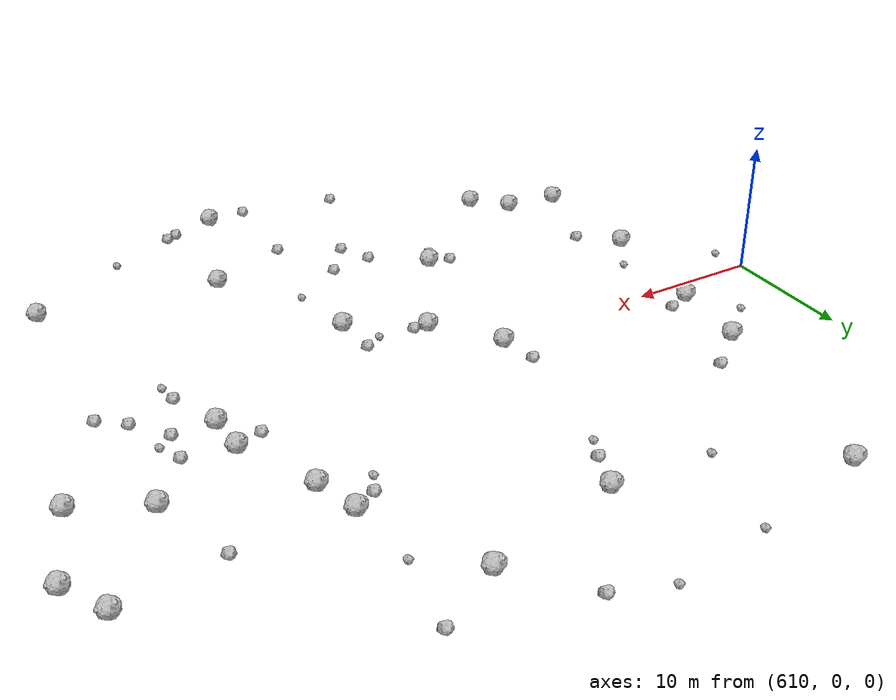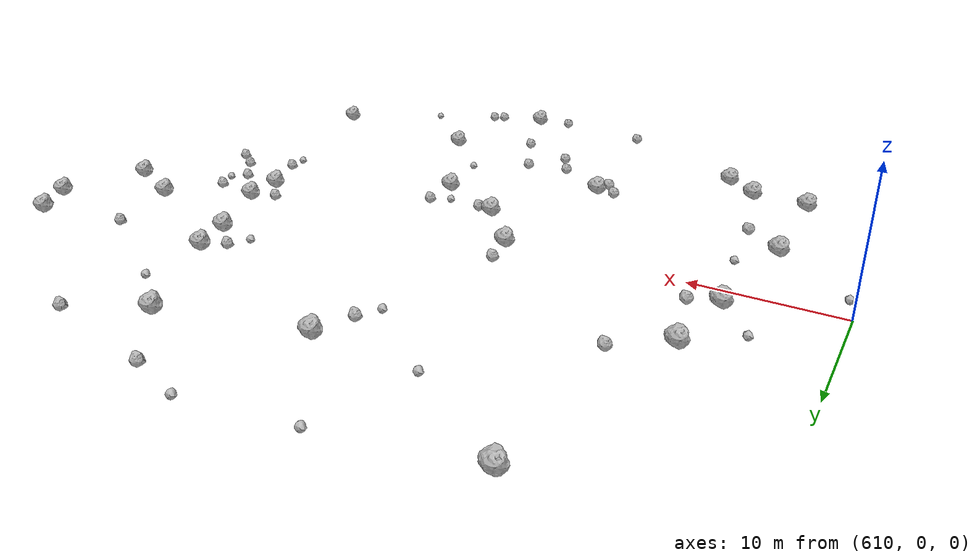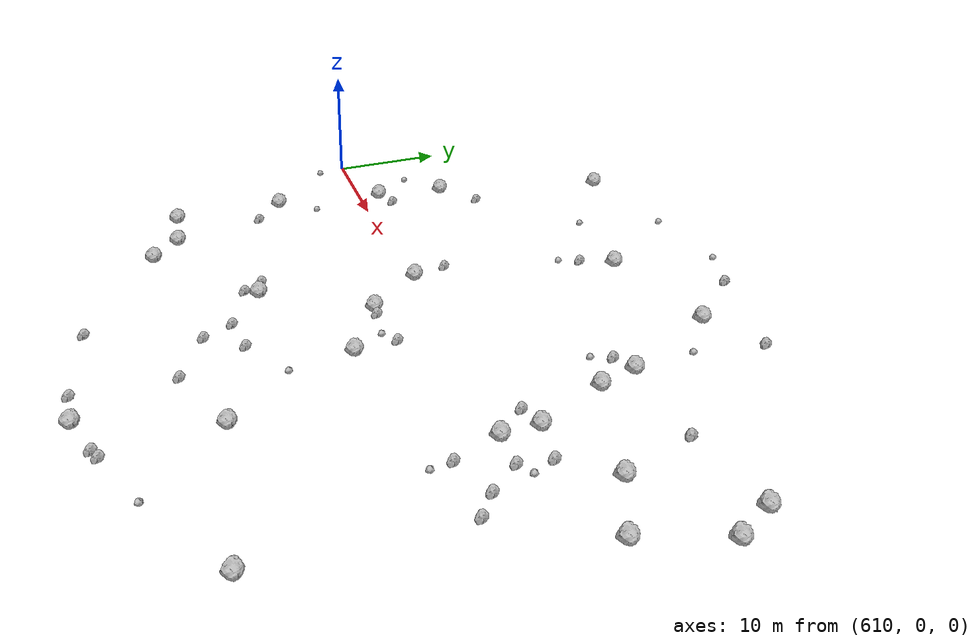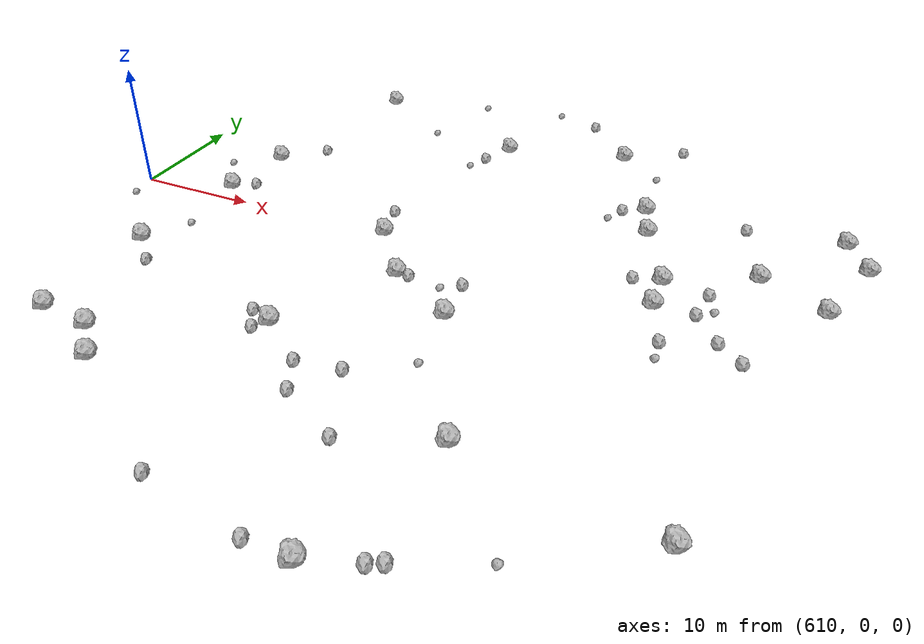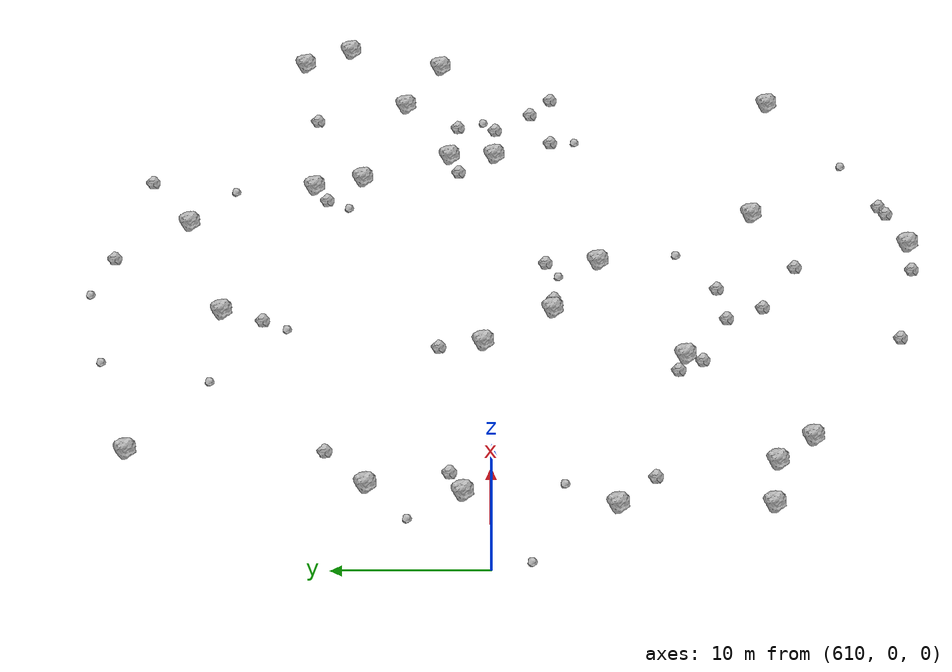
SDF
<sdf version="1.6">
 <world name="default">
  <include><uri>model://sun</uri></include>
  <model name="rock1_16_3">
   <include><uri>model://rock1</uri><pose>632.9094197197462 0.471008779840961 0.5 0 0 0</pose></include>
  </model>
  <model name="rock1_16_4">
   <include><uri>model://rock1</uri><pose>618.1368458897854 8.018554067419643 0.5 0 0 0</pose></include>
  </model>
  <model name="rock1_16_5">
   <include><uri>model://rock1</uri><pose>622.6906957032729 -20.74959928356565 0.5 0 0 0</pose></include>
  </model>
  <model name="rock1_16_6">
   <include><uri>model://rock1</uri><pose>660.9198658950909 5.907492968313029 0.5 0 0 0</pose></include>
  </model>
  <model name="rock1_16_7">
   <include><uri>model://rock1</uri><pose>646.6106684244562 20.697486303134873 0.5 0 0 0</pose></include>
  </model>
  <model name="rock1_16_8">
   <include><uri>model://rock1</uri><pose>660.8494977563406 -20.02996265638669 0.5 0 0 0</pose></include>
  </model>
  <model name="rock1_16_9">
   <include><uri>model://rock1</uri><pose>641.8779000241904 -7.383459192607685 0.5 0 0 0</pose></include>
  </model>
  <model name="rock1_16_10">
   <include><uri>model://rock1</uri><pose>651.8339910350935 8.84039576499115 0.5 0 0 0</pose></include>
  </model>
  <model name="rock1_16_11">
   <include><uri>model://rock1</uri><pose>647.2760189127355 -18.149903370094602 0.5 0 0 0</pose></include>
  </model>
  <model name="rock1_16_12">
   <include><uri>model://rock1</uri><pose>616.0112821272301 -7.980403645363602 0.5 0 0 0</pose></include>
  </model>
  <model name="rock1_16_13">
   <include><uri>model://rock1</uri><pose>650.8561092621403 12.19055459129892 0.5 0 0 0</pose></include>
  </model>
  <model name="rock1_16_14">
   <include><uri>model://rock1</uri><pose>636.4712530429655 18.017312576618757 0.5 0 0 0</pose></include>
  </model>
  <model name="rock1_16_15">
   <include><uri>model://rock1</uri><pose>620.2495067293686 -18.314240660685474 0.5 0 0 0</pose></include>
  </model>
  <model name="rock1_16_16">
   <include><uri>model://rock1</uri><pose>621.7016779465013 23.4731146306435 0.5 0 0 0</pose></include>
  </model>
  <model name="rock1_16_17">
   <include><uri>model://rock1</uri><pose>665.8876611473817 3.4420480330353485 0.5 0 0 0</pose></include>
  </model>
  <model name="rock1_16_18">
   <include><uri>model://rock1</uri><pose>668.1014767832798 10.02790995134766 0.5 0 0 0</pose></include>
  </model>
  <model name="rock1_16_19">
   <include><uri>model://rock1</uri><pose>654.5113190232913 2.7668100997174534 0.5 0 0 0</pose></include>
  </model>
  <model name="rock1_16_20">
   <include><uri>model://rock1</uri><pose>631.348243084093 -12.910310401455881 0.5 0 0 0</pose></include>
  </model>
  <model name="rock1_16_21">
   <include><uri>model://rock1</uri><pose>643.7338814031689 -28.681409960421163 0.5 0 0 0</pose></include>
  </model>
  <model name="rock1_16_22">
   <include><uri>model://rock1</uri><pose>666.3169934090241 13.277414453268918 0.5 0 0 0</pose></include>
  </model>
  <model name="rock1_16_23">
   <include><uri>model://rock1</uri><pose>654.6131563521956 -0.3963750119087486 0.5 0 0 0</pose></include>
  </model>
  <model name="rock1_16_24">
   <include><uri>model://rock1</uri><pose>636.4830291310022 -4.208753316190151 0.5 0 0 0</pose></include>
  </model>
  <model name="rock1_16_25">
   <include><uri>model://rock1</uri><pose>617.3073208193725 1.834285867063766 0.5 0 0 0</pose></include>
  </model>
  <model name="rock1_16_26">
   <include><uri>model://rock1</uri><pose>616.0096170800252 -17.842708660742222 0.5 0 0 0</pose></include>
  </model>
  <model name="rock2_16_0">
   <include><uri>model://rock2</uri><pose>642.395113006252 25.573746862385768 0.3 0 0 0</pose></include>
  </model>
  <model name="rock2_16_1">
   <include><uri>model://rock2</uri><pose>651.3683227371603 23.49832016741233 0.3 0 0 0</pose></include>
  </model>
  <model name="rock2_16_2">
   <include><uri>model://rock2</uri><pose>636.4573314892914 -18.31756444838091 0.3 0 0 0</pose></include>
  </model>
  <model name="rock2_16_3">
   <include><uri>model://rock2</uri><pose>647.1728958467593 -27.467271334976274 0.3 0 0 0</pose></include>
  </model>
  <model name="rock2_16_4">
   <include><uri>model://rock2</uri><pose>635.3021015959893 15.19915484945799 0.3 0 0 0</pose></include>
  </model>
  <model name="rock2_16_5">
   <include><uri>model://rock2</uri><pose>640.6642256130659 -28.705110897635222 0.3 0 0 0</pose></include>
  </model>
  <model name="rock2_16_6">
   <include><uri>model://rock2</uri><pose>661.4405395350601 -4.455496145442233 0.3 0 0 0</pose></include>
  </model>
  <model name="rock2_16_7">
   <include><uri>model://rock2</uri><pose>652.4907784541048 2.115663683246055 0.3 0 0 0</pose></include>
  </model>
  <model name="rock2_16_8">
   <include><uri>model://rock2</uri><pose>658.9240169835775 12.170027954628232 0.3 0 0 0</pose></include>
  </model>
  <model name="rock2_16_9">
   <include><uri>model://rock2</uri><pose>656.0499436336057 -4.383915968041006 0.3 0 0 0</pose></include>
  </model>
  <model name="rock2_16_10">
   <include><uri>model://rock2</uri><pose>621.3977366493409 10.674784461741737 0.3 0 0 0</pose></include>
  </model>
  <model name="rock2_16_11">
   <include><uri>model://rock2</uri><pose>618.6461078917827 -10.470662843728451 0.3 0 0 0</pose></include>
  </model>
  <model name="rock2_16_12">
   <include><uri>model://rock2</uri><pose>638.5931368588936 -15.33424816226602 0.3 0 0 0</pose></include>
  </model>
  <model name="rock2_16_13">
   <include><uri>model://rock2</uri><pose>641.6440588161774 -3.81588339649052 0.3 0 0 0</pose></include>
  </model>
  <model name="rock2_16_14">
   <include><uri>model://rock2</uri><pose>658.0196017600501 2.1736504858082384 0.3 0 0 0</pose></include>
  </model>
  <model name="rock2_16_15">
   <include><uri>model://rock2</uri><pose>637.562775142748 -4.316661341828706 0.3 0 0 0</pose></include>
  </model>
  <model name="rock2_16_16">
   <include><uri>model://rock2</uri><pose>635.2641760987769 -15.839934349586443 0.3 0 0 0</pose></include>
  </model>
  <model name="rock2_16_17">
   <include><uri>model://rock2</uri><pose>648.0498996117956 -27.02989108088883 0.3 0 0 0</pose></include>
  </model>
  <model name="rock2_16_18">
   <include><uri>model://rock2</uri><pose>619.2086496321136 2.678564265830431 0.3 0 0 0</pose></include>
  </model>
  <model name="rock2_16_19">
   <include><uri>model://rock2</uri><pose>649.1255777320739 11.251649898513946 0.3 0 0 0</pose></include>
  </model>
  <model name="rock2_16_20">
   <include><uri>model://rock2</uri><pose>640.9889192377844 -20.752299592628166 0.3 0 0 0</pose></include>
  </model>
  <model name="rock2_16_21">
   <include><uri>model://rock2</uri><pose>659.6187375933187 -2.995451061502237 0.3 0 0 0</pose></include>
  </model>
  <model name="rock2_16_22">
   <include><uri>model://rock2</uri><pose>657.653167297312 -0.4757723830050615 0.3 0 0 0</pose></include>
  </model>
  <model name="rock2_16_23">
   <include><uri>model://rock2</uri><pose>633.0344656663109 -27.291090771769145 0.3 0 0 0</pose></include>
  </model>
  <model name="rock2_16_24">
   <include><uri>model://rock2</uri><pose>630.724969640869 -14.027763716853219 0.3 0 0 0</pose></include>
  </model>
  <model name="rock2_16_25">
   <include><uri>model://rock2</uri><pose>629.6912014405942 -12.393568971747758 0.3 0 0 0</pose></include>
  </model>
  <model name="rock2_16_26">
   <include><uri>model://rock2</uri><pose>632.3085653810125 3.4156706867261732 0.3 0 0 0</pose></include>
  </model>
  <model name="rock3_16_0">
   <include><uri>model://rock3</uri><pose>634.4349107928523 13.51358179941441 0.2 0 0 0</pose></include>
  </model>
  <model name="rock3_16_1">
   <include><uri>model://rock3</uri><pose>630.9806108574523 25.67054319138728 0.2 0 0 0</pose></include>
  </model>
  <model name="rock3_16_2">
   <include><uri>model://rock3</uri><pose>656.1948693417917 -6.121479311689072 0.2 0 0 0</pose></include>
  </model>
  <model name="rock3_16_3">
   <include><uri>model://rock3</uri><pose>618.1197367408889 -4.709111460686188 0.2 0 0 0</pose></include>
  </model>
  <model name="rock3_16_4">
   <include><uri>model://rock3</uri><pose>650.3165116294701 17.61097392007853 0.2 0 0 0</pose></include>
  </model>
  <model name="rock3_16_5">
   <include><uri>model://rock3</uri><pose>653.0798695496778 -24.805820462789953 0.2 0 0 0</pose></include>
  </model>
  <model name="rock3_16_6">
   <include><uri>model://rock3</uri><pose>614.7766542979158 5.313075291010897 0.2 0 0 0</pose></include>
  </model>
  <model name="rock3_16_7">
   <include><uri>model://rock3</uri><pose>642.5840665508373 -12.75149769911036 0.2 0 0 0</pose></include>
  </model>
  <model name="rock3_16_8">
   <include><uri>model://rock3</uri><pose>638.4082724914254 26.905132383128503 0.2 0 0 0</pose></include>
  </model>
  <model name="rock3_16_9">
   <include><uri>model://rock3</uri><pose>658.720614627851 0.34509491935990866 0.2 0 0 0</pose></include>
  </model>
  <model name="rock3_16_10">
   <include><uri>model://rock3</uri><pose>640.2062090419171 -4.694025305665001 0.2 0 0 0</pose></include>
  </model>
  <model name="rock3_16_11">
   <include><uri>model://rock3</uri><pose>628.8213710863386 18.399233146672756 0.2 0 0 0</pose></include>
  </model>
  <model name="rock3_16_12">
   <include><uri>model://rock3</uri><pose>610.5338564706095 -2.5143313018817572 0.2 0 0 0</pose></include>
  </model>
  <model name="rock3_16_13">
   <include><uri>model://rock3</uri><pose>648.3200232328993 9.685656247070582 0.2 0 0 0</pose></include>
  </model>
 </world>
</sdf>
